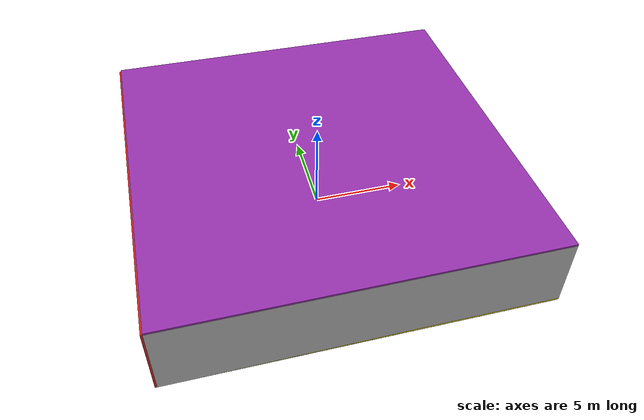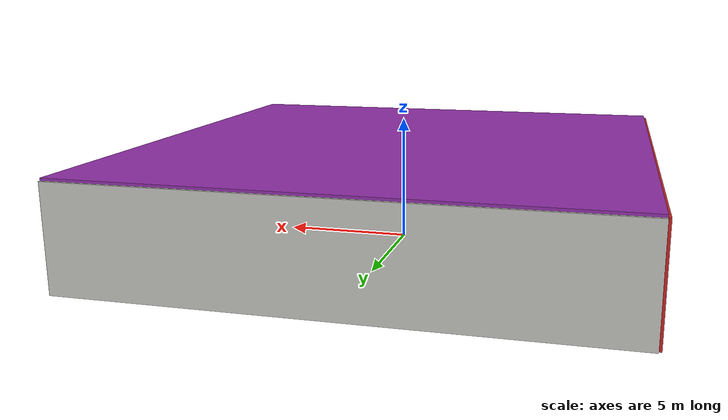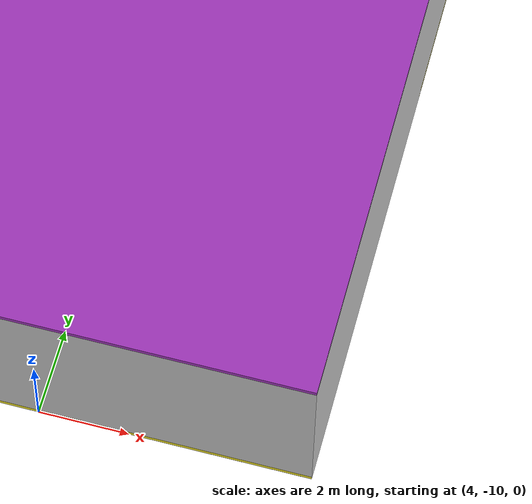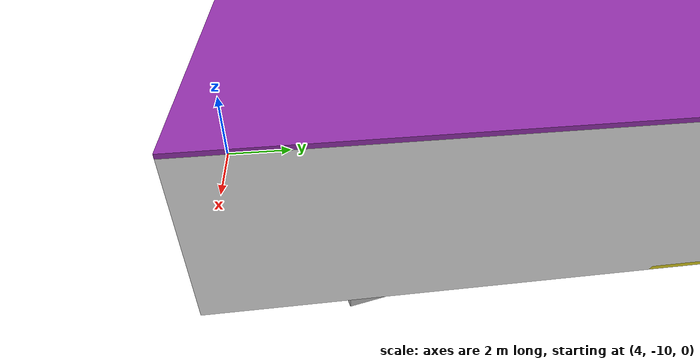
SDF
<sdf version="1.4">
 <world name="default">
  <physics type="ode">
   <max_step_size>0.001</max_step_size>
   <real_time_factor>1</real_time_factor>
   <real_time_update_rate>1000</real_time_update_rate>
   <gravity>0 0 -9.8</gravity>
  </physics>
  <scene><ambient>0.4 0.4 0.4 1</ambient><background>0.7 0.7 0.7 1</background><shadows>1</shadows></scene>
  <model name="Surrounding">
   <static>1</static>
   <link name="Ceiling">
    <collision name="Ceiling_Collision"><geometry><box><size>20 20 0.1</size></box></geometry></collision>
    <visual name="Ceiling_Visual">
     <geometry><box><size>20 20 0.1</size></box></geometry>
     <material>
      <script><uri>file://media/materials/scripts/gazebo.material</uri><name>Gazebo/PurpleGlow</name></script>
     </material>
    </visual>
    <pose>0 0 4.05 0 0 0</pose>
   </link>
   <link name="Wall_South">
    <collision name="Wall_South_Collision">
     <geometry><box><size>20 0 4</size></box></geometry>
     <pose>0 0 2 0 -0 0</pose>
    </collision>
    <visual name="Wall_South_Visual">
     <pose>0 0 2 0 -0 0</pose>
     <geometry><box><size>20 0 4</size></box></geometry>
     <material>
      <script><uri>file://media/materials/scripts/gazebo.material</uri><name>Gazebo/JointAnchor</name></script>
     </material>
    </visual>
    <velocity_decay><linear>0</linear><angular>0</angular></velocity_decay>
    <pose>0 -10 0 0 -0 0</pose>
   </link>
   <link name="Wall_East">
    <collision name="Wall_21_Collision">
     <geometry><box><size>20 0 4</size></box></geometry>
     <pose>0 0 2 0 -0 0</pose>
    </collision>
    <visual name="Wall_21_Visual">
     <pose>0 0 2 0 -0 0</pose>
     <geometry><box><size>20 0 4</size></box></geometry>
     <material>
      <script><uri>file://media/materials/scripts/gazebo.material</uri><name>Gazebo/White</name></script>
     </material>
    </visual>
    <velocity_decay><linear>0</linear><angular>0</angular></velocity_decay>
    <pose>10 0 0 0 -0 1.5708</pose>
   </link>
   <link name="Wall_North">
    <collision name="Wall_22_Collision">
     <geometry><box><size>20 0.2 4</size></box></geometry>
     <pose>0 0 2 0 -0 0</pose>
    </collision>
    <visual name="Wall_22_Visual">
     <pose>0 0 2 0 -0 0</pose>
     <geometry><box><size>20 0.2 4</size></box></geometry>
     <material>
      <script><uri>file://media/materials/scripts/gazebo.material</uri><name>Gazebo/CeilingTiled</name></script>
     </material>
    </visual>
    <velocity_decay><linear>0</linear><angular>0</angular></velocity_decay>
    <pose>0 10 0 0 -0 0</pose>
   </link>
   <link name="Wall_West">
    <collision name="Wall_23_Collision">
     <geometry><box><size>20 0.2 4</size></box></geometry>
     <pose>0 0 2 0 -0 0</pose>
    </collision>
    <visual name="Wall_23_Visual">
     <pose>0 0 2 0 -0 0</pose>
     <geometry><box><size>20 0.2 4</size></box></geometry>
     <material>
      <script><uri>file://media/materials/scripts/gazebo.material</uri><name>Gazebo/Red</name></script>
     </material>
    </visual>
    <velocity_decay><linear>0</linear><angular>0</angular></velocity_decay>
    <pose>-10 0 0 0 0 -1.5708</pose>
   </link>
   <link name="Ground_link">
    <collision name="collision">
     <pose>0 0 .05 0 -0 0</pose>
     <geometry><box><size>20 20 0.1</size></box></geometry>
    </collision>
    <visual name="visual">
     <pose>0 0 .05 0 -0 0</pose>
     <geometry><box><size>20 20 0.1</size></box></geometry>
     <material>
      <script><uri>file://media/materials/scripts/gazebo.material</uri><name>Gazebo/Yellow</name></script>
     </material>
    </visual>
   </link>
   <static>1</static>
  </model>
  <spherical_coordinates>
   <surface_model>EARTH_WGS84</surface_model>
   <latitude_deg>0</latitude_deg>
   <longitude_deg>0</longitude_deg>
   <elevation>0</elevation>
   <heading_deg>0</heading_deg>
  </spherical_coordinates>
  <light name="lightball_0" type="diffuse">
   <diffuse>0.8 0.8 0.8 1</diffuse>
   <specular>0.2 0.2 0.2 1</specular>
   <attenuation>
    <range>100</range>
    <constant>0.7</constant>
    <linear>0.01</linear>
    <quadratic>0.001</quadratic>
   </attenuation>
   <direction>-0.5 0.1 -0.9</direction>
   <pose>-7.84187422154 0.0212632644803 3.38233438857 0 0 0</pose>
  </light>
  <light name="lightball_1" type="diffuse">
   <diffuse>0.8 0.8 0.8 1</diffuse>
   <specular>0.2 0.2 0.2 1</specular>
   <attenuation>
    <range>100</range>
    <constant>0.7</constant>
    <linear>0.01</linear>
    <quadratic>0.001</quadratic>
   </attenuation>
   <direction>-0.5 0.1 -0.9</direction>
   <pose>9.90232403988 -9.22399442793 1.93052547559 0 0 0</pose>
  </light>
  <light name="lightball_2" type="diffuse">
   <diffuse>0.8 0.8 0.8 1</diffuse>
   <specular>0.2 0.2 0.2 1</specular>
   <attenuation>
    <range>100</range>
    <constant>0.7</constant>
    <linear>0.01</linear>
    <quadratic>0.001</quadratic>
   </attenuation>
   <direction>-0.5 0.1 -0.9</direction>
   <pose>-8.76258227655 -4.25175263242 1.54750561434 0 0 0</pose>
  </light>
  <light name="lightball_3" type="diffuse">
   <diffuse>0.8 0.8 0.8 1</diffuse>
   <specular>0.2 0.2 0.2 1</specular>
   <attenuation>
    <range>100</range>
    <constant>0.7</constant>
    <linear>0.01</linear>
    <quadratic>0.001</quadratic>
   </attenuation>
   <direction>-0.5 0.1 -0.9</direction>
   <pose>-3.32644930594 7.78607135998 2.410730623 0 0 0</pose>
  </light>
  <include><uri>model://cabinet</uri><pose>-4.94639991835 -8.2845347507 0 0 0 2.48803372755</pose></include>
  <include><uri>model://cabinet</uri><pose>-2.62223256433 -4.26272386191 0 0 0 0.573231381547</pose></include>
  <include>
   <uri>model://textured_shapes</uri>
   <pose>-1.785356591 0.304463300772 0 0 0 0.510665949909</pose>
  </include>
  <include><uri>model://cabinet</uri><pose>-2.31278577269 6.72841353088 0 0 0 2.42870360015</pose></include>
  <include><uri>model://cabinet</uri><pose>5.19455370174 -0.629365646727 0 0 0 0.458710688255</pose></include>
  <include><uri>model://cabinet</uri><pose>3.764031988 5.62747864866 0 0 0 2.4144634388</pose></include>
  <include>
   <uri>model://textured_shapes</uri>
   <pose>7.73136156881 -6.72022479925 0 0 0 1.76961328421</pose>
  </include>
  <include>
   <uri>model://construction_cone</uri>
   <pose>6.73508227164 0.342720508217 0 0 0 2.88785815815</pose>
  </include>
 </world>
</sdf>

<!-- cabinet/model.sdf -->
<sdf version="1.5">
  <model name="cabinet">
    <static>true</static>
    <link name="cabinet_bottom_plate">
      <inertial>
        <pose>0 0 -1 0 0 0</pose>
        <inertia>
          <ixx>2.050000</ixx>
          <ixy>0</ixy>
          <ixz>0</ixz>
          <iyy>2.050000</iyy>
          <iyz>0</iyz>
          <izz>2.050000</izz>
        </inertia>
        <mass>25.000000</mass>
      </inertial>
      <collision name="cabinet_bottom_plate_geom">
        <pose>0 0 0.010000 0 0 0</pose>
        <geometry>
          <box>
            <size>0.450000 0.450000 0.020000</size>
          </box>
        </geometry>
      </collision>
      <visual name="cabinet_bottom_plate_geom_visual">
        <pose>0 0 0.010000 0 0 0</pose>
        <geometry>
          <box>
            <size>0.450000 0.450000 0.020000</size>
          </box>
        </geometry>
        <material>
          <script>
            <uri>model://media/materials/scripts/gazebo.material</uri>
            <name>Gazebo/Wood</name>
          </script>
        </material>
      </visual>
      <collision name="cabinet_bottom_plate_geom_cabinet_back_plate">
        <pose>0.235000 0 0.510000 0 0 0</pose>
        <geometry>
          <box>
            <size>0.020000 0.450000 1.020000</size>
          </box>
        </geometry>
      </collision>
      <visual name="cabinet_bottom_plate_geom_cabinet_back_plate_visual">
        <pose>0.235000 0 0.510000 0 0 0</pose>
        <geometry>
          <box>
            <size>0.020000 0.450000 1.020000</size>
          </box>
        </geometry>
        <material>
          <script>
            <uri>model://media/materials/scripts/gazebo.material</uri>
            <name>Gazebo/Wood</name>
          </script>
        </material>
      </visual>
      <collision name="cabinet_bottom_plate_geom_cabinet_left_plate">
        <pose>0 0.235000 0.510000 0 0 0</pose>
        <geometry>
          <box>
            <size>0.450000 0.020000 1.020000</size>
          </box>
        </geometry>
      </collision>
      <visual name="cabinet_bottom_plate_geom_cabinet_left_plate_visual">
        <pose>0 0.235000 0.510000 0 0 0</pose>
        <geometry>
          <box>
            <size>0.450000 0.020000 1.020000</size>
          </box>
        </geometry>
        <material>
          <script>
            <uri>model://media/materials/scripts/gazebo.material</uri>
            <name>Gazebo/Wood</name>
          </script>
        </material>
      </visual>
      <collision name="cabinet_bottom_plate_geom_cabinet_middle_plate">
        <pose>0 0 0.510000 0 0 0</pose>
        <geometry>
          <box>
            <size>0.450000 0.450000 0.020000</size>
          </box>
        </geometry>
      </collision>
      <visual name="cabinet_bottom_plate_geom_cabinet_middle_plate_visual">
        <pose>0 0 0.510000 0 0 0</pose>
        <geometry>
          <box>
            <size>0.450000 0.450000 0.020000</size>
          </box>
        </geometry>
        <material>
          <script>
            <uri>model://media/materials/scripts/gazebo.material</uri>
            <name>Gazebo/Wood</name>
          </script>
        </material>
      </visual>
      <collision name="cabinet_bottom_plate_geom_cabinet_right_plate">
        <pose>0 -0.235000 0.510000 0 0 0</pose>
        <geometry>
          <box>
            <size>0.450000 0.020000 1.020000</size>
          </box>
        </geometry>
      </collision>
      <visual name="cabinet_bottom_plate_geom_cabinet_right_plate_visual">
        <pose>0 -0.235000 0.510000 0 0 0</pose>
        <geometry>
          <box>
            <size>0.450000 0.020000 1.020000</size>
          </box>
        </geometry>
        <material>
          <script>
            <uri>model://media/materials/scripts/gazebo.material</uri>
            <name>Gazebo/Wood</name>
          </script>
        </material>
      </visual>
      <collision name="cabinet_bottom_plate_geom_cabinet_top_plate">
        <pose>0 0 1.010000 0 0 0</pose>
        <geometry>
          <box>
            <size>0.450000 0.450000 0.020000</size>
          </box>
        </geometry>
      </collision>
      <visual name="cabinet_bottom_plate_geom_cabinet_top_plate_visual">
        <pose>0 0 1.010000 0 0 0</pose>
        <geometry>
          <box>
            <size>0.450000 0.450000 0.020000</size>
          </box>
        </geometry>
        <material>
          <script>
            <uri>model://media/materials/scripts/gazebo.material</uri>
            <name>Gazebo/Wood</name>
          </script>
        </material>
      </visual>
    </link>
  </model>
</sdf>

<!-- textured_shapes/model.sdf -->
<sdf version="1.6">
  <model name="textured_shapes">
    <pose>0 0 0.5 0 0 0</pose>
    <link name="box">
      <pose>0 -1.5 0 0 0 0</pose>
      <collision name="collision">
        <geometry>
          <box>
            <size>1 1 1</size>
          </box>
        </geometry>
      </collision>
      <visual name="visual">
        <geometry>
          <box>
            <size>1 1 1</size>
          </box>
        </geometry>
        <material>
          <script>
            <uri>model://../model_source/models/textured_shapes/materials/scripts</uri>
            <uri>model://../model_source/models/textured_shapes/materials/textures</uri>
            <name>TexturedShape/Squares</name>
          </script>
        </material>
      </visual>
    </link>
    <link name="sphere">
      <collision name="collision">
        <geometry>
          <sphere>
            <radius>0.5</radius>
          </sphere>
        </geometry>
      </collision>
      <visual name="visual">
        <geometry>
          <sphere>
            <radius>0.5</radius>
          </sphere>
        </geometry>
        <material>
          <script>
            <uri>model://../model_source/models/textured_shapes/materials/scripts</uri>
            <uri>model://../model_source/models/textured_shapes/materials/textures</uri>
            <name>TexturedShape/Squares</name>
          </script>
        </material>
      </visual>
    </link>
    <link name="cylinder">
      <pose>0 1.5 0 0 0 0</pose>
      <collision name="collision">
        <geometry>
          <cylinder>
            <radius>0.5</radius>
            <length>1</length>
          </cylinder>
        </geometry>
      </collision>
      <visual name="visual">
        <geometry>
          <cylinder>
            <radius>0.5</radius>
            <length>1</length>
          </cylinder>
        </geometry>
        <material>
          <script>
            <uri>model://../model_source/models/textured_shapes/materials/scripts</uri>
            <uri>model://../model_source/models/textured_shapes/materials/textures</uri>
            <name>TexturedShape/Squares</name>
          </script>
        </material>
      </visual>
    </link>
  </model>
</sdf>

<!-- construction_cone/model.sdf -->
<sdf version="1.5">
  <model name="Construction Cone">
    <link name="link">
      <collision name="collision">
        <geometry>
          <mesh>
            <scale>10 10 10</scale>
            <uri>file://isr-testbed/construction_cone/meshes/construction_cone.dae</uri>
          </mesh>
        </geometry>
      </collision>
      <visual name="visual">
        <geometry>
          <mesh>
            <scale>10 10 10</scale>
            <uri>file://isr-testbed/construction_cone/meshes/construction_cone.dae</uri>
          </mesh>
        </geometry>
      </visual>
    </link>
  </model>
</sdf>
